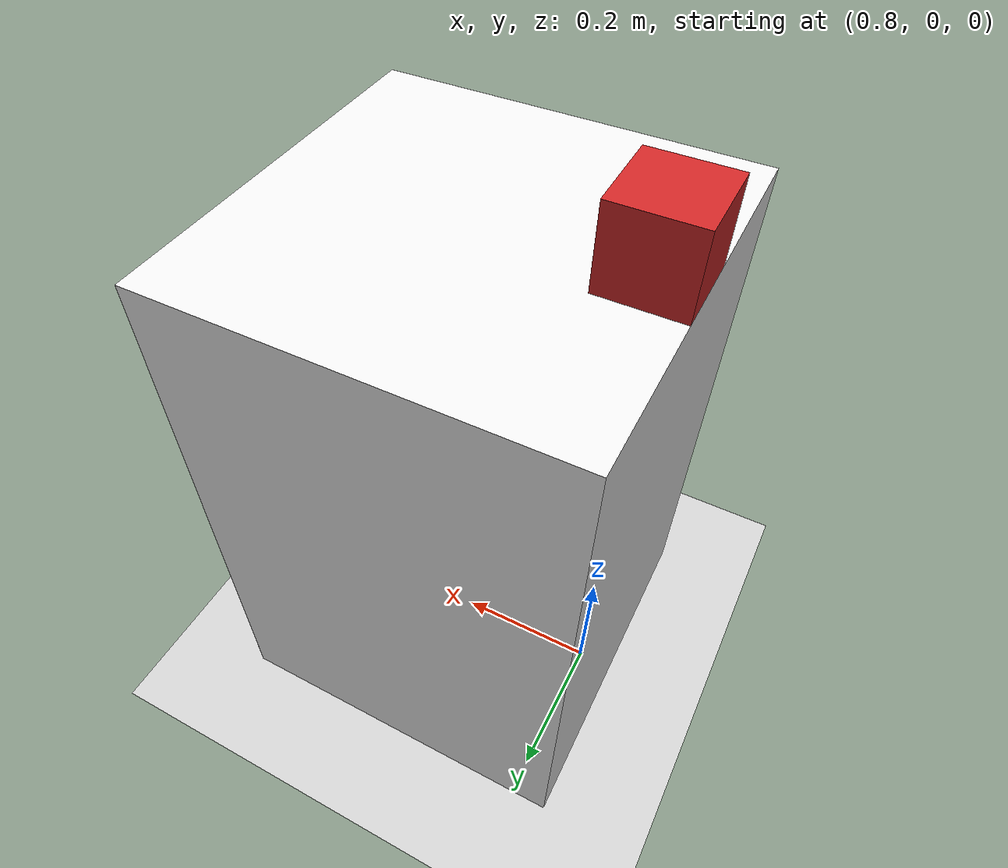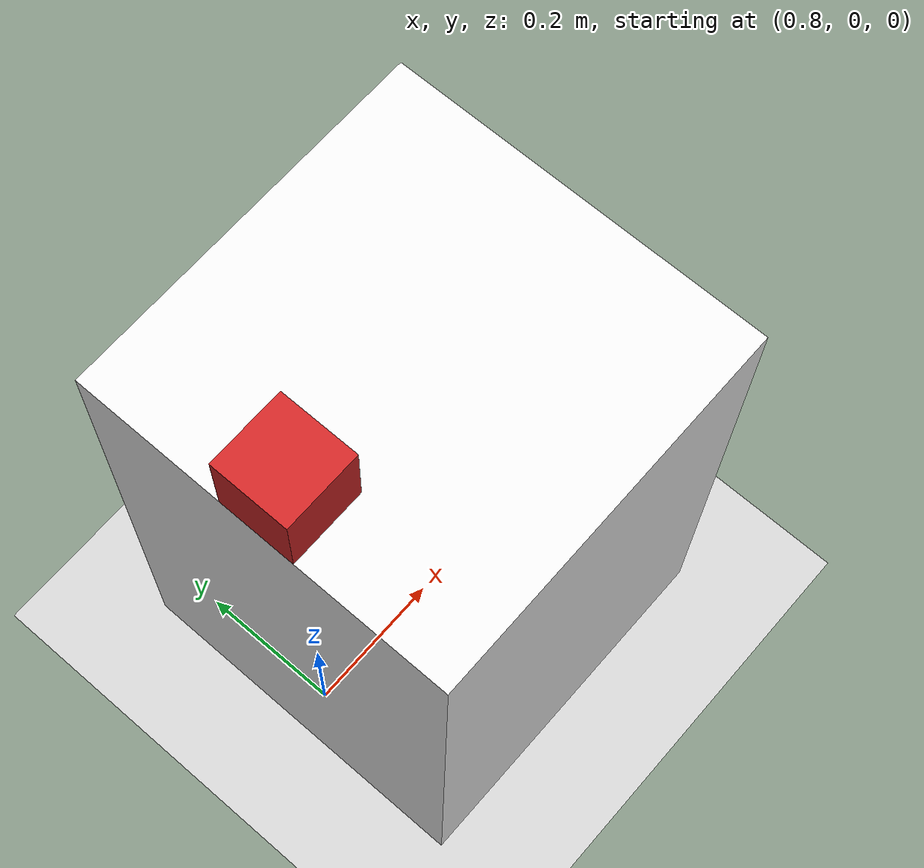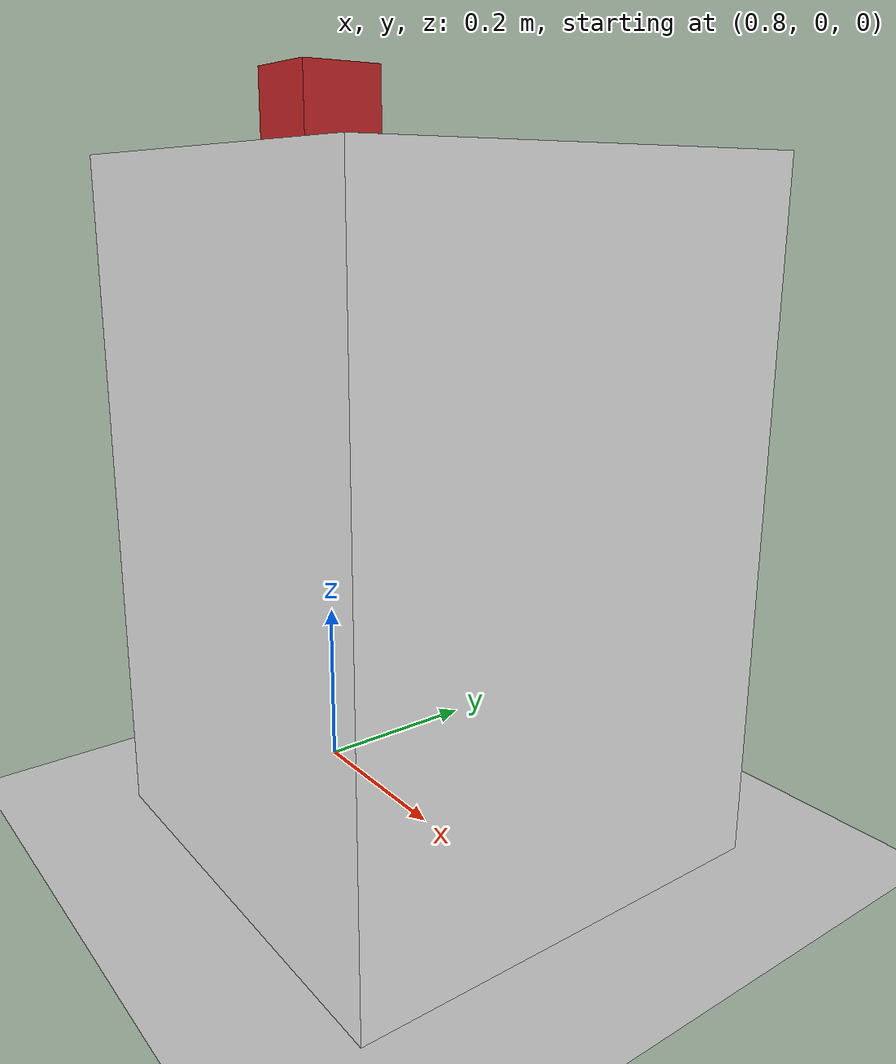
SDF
<?xml version="1.0" ?>
<sdf version='1.6'>
  <world name='default'>
    <light name='sun' type='directional'>
      <cast_shadows>1</cast_shadows>
      <pose frame=''>0 0 10 0 -0 0</pose>
      <diffuse>0.8 0.8 0.8 1</diffuse>
      <specular>0.2 0.2 0.2 1</specular>
      <attenuation>
        <range>1000</range>
        <constant>0.9</constant>
        <linear>0.01</linear>
        <quadratic>0.001</quadratic>
      </attenuation>
      <direction>-0.5 0.1 -0.9</direction>
    </light>

    <model name='ground_plane'>
      <static>1</static>
      <link name='link'>
        <collision name='collision'>
          <geometry><plane><normal>0 0 1</normal><size>100 100</size></plane></geometry>
          <surface>
            <contact><collide_bitmask>65535</collide_bitmask><ode/></contact>
            <friction><ode><mu>100</mu><mu2>50</mu2></ode></friction>
          </surface>
          <max_contacts>10</max_contacts>
        </collision>
        <visual name='visual'>
          <cast_shadows>0</cast_shadows>
          <geometry><plane><normal>0 0 1</normal><size>100 100</size></plane></geometry>
          <material><script><uri>file://media/materials/scripts/gazebo.material</uri><name>Gazebo/Grey</name></script></material>
        </visual>
      </link>
    </model>

    <model name="pickup_table_A">
      <static>1</static>
      <pose>1.0 0.0 0.375 0 0 0</pose>
      <link name="link">
        <collision name="collision"><geometry><box><size>0.5 0.5 0.75</size></box></geometry></collision>
        <visual name="visual">
          <geometry><box><size>0.5 0.5 0.75</size></box></geometry>
          <material><script><uri>file://media/materials/scripts/gazebo.material</uri><name>Gazebo/White</name></script></material>
        </visual>
      </link>
    </model>

    <model name='cargo_box_on_edge'>
      <pose>0.8 0.0 0.8 0 0 0</pose>
      <link name='link'>
        <inertial>
          <mass>0.1</mass>
          <inertia>
            <ixx>0.000166</ixx><iyy>0.000166</iyy><izz>0.000166</izz>
            <ixy>0</ixy><ixz>0</ixz><iyz>0</iyz>
          </inertia>
        </inertial>
        <collision name='collision'>
          <geometry><box><size>0.1 0.1 0.1</size></box></geometry>
          <surface>
            <friction>
              <ode><mu>1.0</mu><mu2>1.0</mu2></ode>
            </friction>
          </surface>
        </collision>
        <visual name='visual'>
          <geometry><box><size>0.1 0.1 0.1</size></box></geometry>
          <material>
            <script>
              <uri>file://media/materials/scripts/gazebo.material</uri>
              <name>Gazebo/Red</name>
            </script>
          </material>
        </visual>
      </link>
    </model>

    <gravity>0 0 -9.8</gravity>
    <magnetic_field>6e-06 2.3e-05 -4.2e-05</magnetic_field>
    <atmosphere type='adiabatic'/>
    <physics name='default_physics' default='0' type='ode'>
      <max_step_size>0.001</max_step_size>
      <real_time_factor>1</real_time_factor>
      <real_time_update_rate>1000</real_time_update_rate>
    </physics>
    <scene>
      <ambient>0.4 0.4 0.4 1</ambient>
      <background>0.7 0.7 0.7 1</background>
      <shadows>1</shadows>
    </scene>
    <audio><device>default</device></audio>
    <wind/>
    <spherical_coordinates>
      <surface_model>EARTH_WGS84</surface_model>
      <latitude_deg>0</latitude_deg>
      <longitude_deg>0</longitude_deg>
      <elevation>0</elevation>
      <heading_deg>0</heading_deg>
    </spherical_coordinates>

    <gui fullscreen='0'>
      <camera name='user_camera'>
        <pose frame=''>-3.5 0.5 5.5 0 0.6 -0.15</pose>
        <view_controller>orbit</view_controller>
        <projection_type>perspective</projection_type>
      </camera>
    </gui>
  </world>
</sdf>
